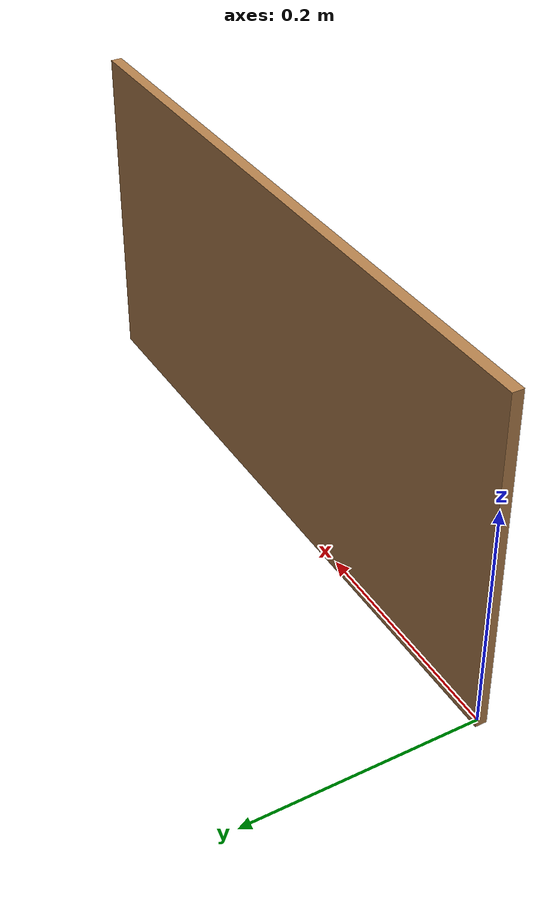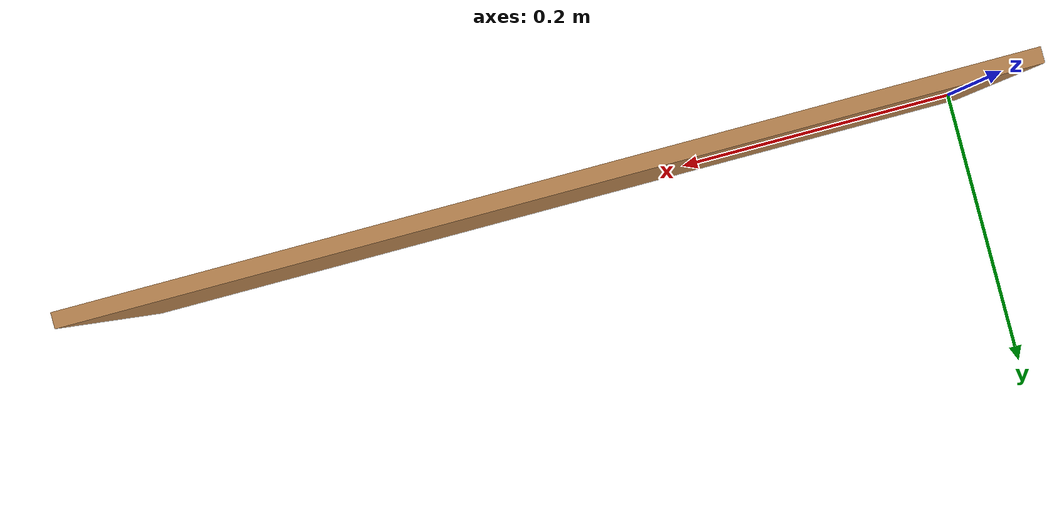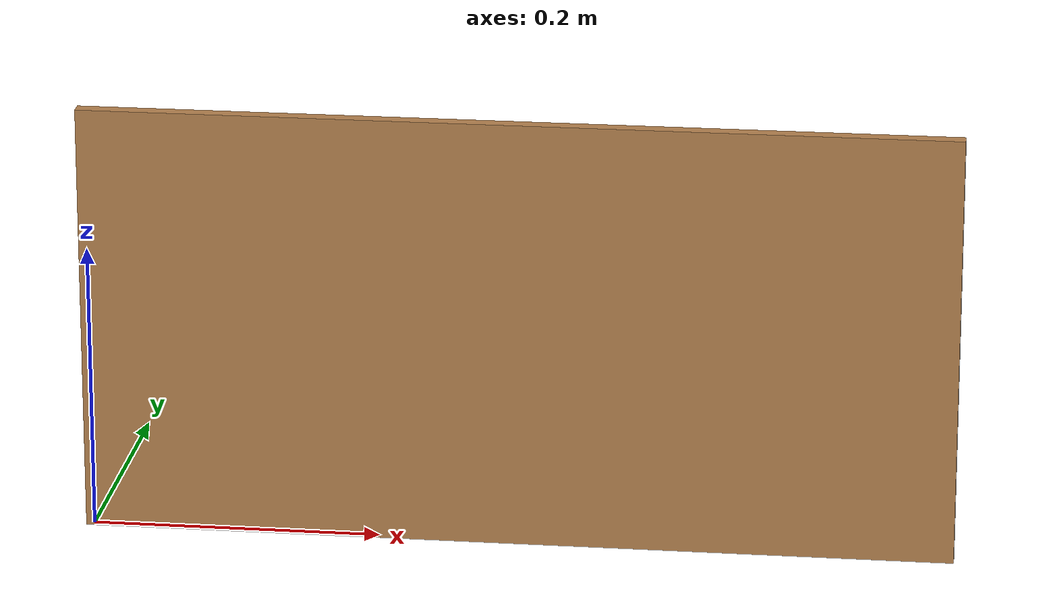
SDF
<?xml version='1.0'?>
<sdf version='1.7'>
  <model name='wood_0_6m'>
    <pose>0.295 0 0 0 -0 0</pose>
    <link name='Wall_0'>
      <collision name='Wall_0_Collision'>
        <geometry>
          <box>
            <size>0.6 0.01 0.3</size>
          </box>
        </geometry>
        <pose>0 0 0.15 0 -0 0</pose>
      </collision>
      <visual name='Wall_0_Visual'>
        <pose>0 0 0.15 0 -0 0</pose>
        <geometry>
          <box>
            <size>0.6 0.01 0.3</size>
          </box>
        </geometry>
        <material>
          <script>
            <uri>file://media/materials/scripts/gazebo.material</uri>
            <name>Gazebo/Wood</name>
          </script>
          <ambient>1 1 1 1</ambient>
        </material>
        <meta>
          <layer>0</layer>
        </meta>
      </visual>
      <pose>-0 -0 0 0 -0 0</pose>
    </link>
    <static>1</static>
  </model>
</sdf>
